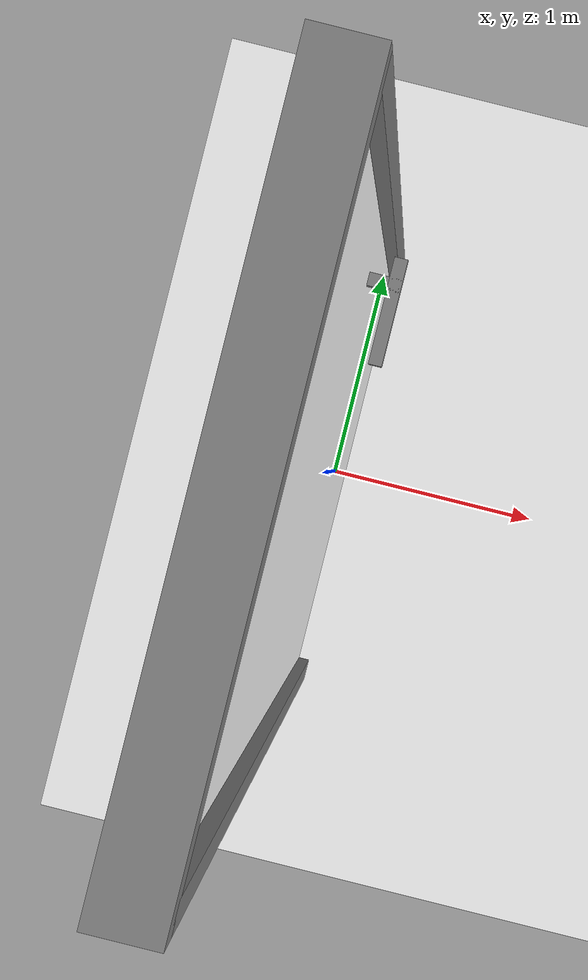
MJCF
<mujoco>
    <worldbody>
        <light diffuse="1 1 1" pos="0 0 10" dir="0 0 -1"/>

        <!-- Ground plane with a neutral color -->
        <geom type="plane" size="10 10 0.05" rgba="0.95 0.95 0.95 1"/>

        <!-- Door frame as a static object -->

        <!-- Left frame -->
        <geom type="box" size="0.1 0.05 2" rgba="0.5 0.5 0.5 1" pos="0 -1 2"/>
        <!-- Right frame -->
        <geom type="box" size="0.1 0.05 2" rgba="0.5 0.5 0.5 1" pos="0 1 2"/>
        <!-- Top frame -->
        <geom type="box" size="0.1 1.05 0.05" rgba="0.5 0.5 0.5 1" pos="0 0 4.025"/>
        <body>
            <!-- door defined with a hinge joint -->
            <body name="door_body" pos="0 0 2">
                <joint name="door_hinge" type="hinge" pos="0 -0.95 0" axis="0 0 1" range="-90 90"/>
                <geom type="box" size="0.05 0.95 2" rgba="1 1 1 1"/>

                <!-- Door Handle Middle part-->
                <geom type="box" size="0.1 0.025 0.025" rgba="0.5 0.5 0.5 1" pos="0.075 0.75 0"/>
                <!-- Door Handle -->
                <body name="door_handle" pos="0 0 0">
                    <joint name="handle_hinge" type="hinge" pos="0 0.75 0" axis="1 0 0" range="0 60" limited="true"/>
                    <geom type="box" size="0.025 0.2 0.025" rgba="0.5 0.5 0.5 1" pos="0.15 0.65 0"/>
                </body>
            </body>

        </body>

    </worldbody>

    <actuator>
        <motor name="door_hinge" gear="10000000" joint="door_hinge"/>
        <motor name="handle_hinge" gear="1000000" joint="handle_hinge"/>

    </actuator>

</mujoco>
